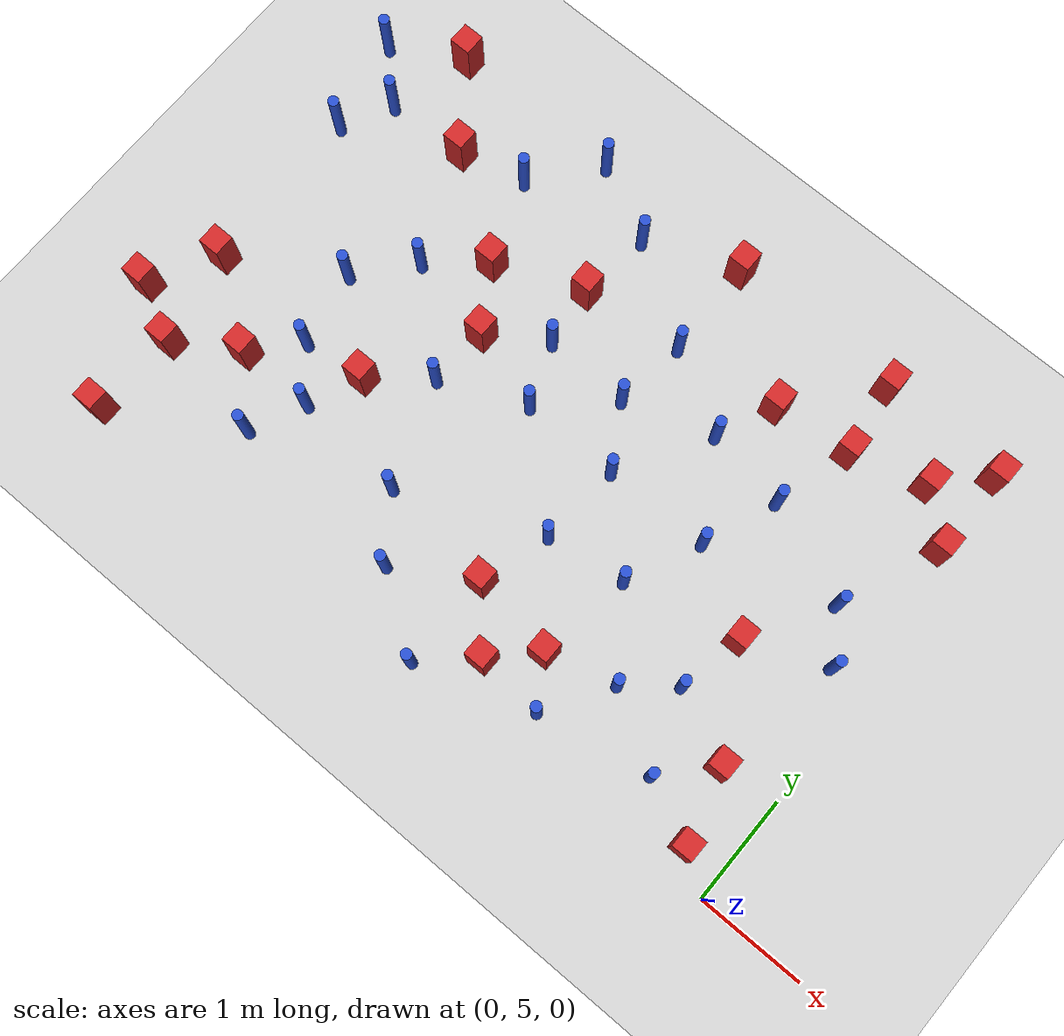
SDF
<sdf version="1.6">
 <world name="default">
  <model name="ground_plane">
   <static>1</static>
   <link name="link">
    <collision name="collision">
     <geometry><plane><normal>0 0 1</normal><size>100 100</size></plane></geometry>
     <surface><friction><ode><mu>100</mu><mu2>50</mu2></ode></friction></surface>
    </collision>
    <visual name="visual">
     <cast_shadows>0</cast_shadows>
     <geometry><plane><normal>0 0 1</normal><size>100 100</size></plane></geometry>
     <material>
      <ambient>1.0 1.0 1.0 1.0</ambient>
      <diffuse>0.8 0.8 0.8 1.0</diffuse>
      <specular>0.01 0.01 0.01 1.000000</specular>
     </material>
    </visual>
   </link>
  </model>
  <model name="pole_obstacle4">
   <static>true</static>
   <pose>-6.87340431811 9.03791344532 7.38925637345e-09 -8.471706928e-08 1.24976765081e-08 -1.74513093015e-07</pose>
   <link name="link">
    <pose>0 0 0.3 0 -0 0</pose>
    <inertial>
     <mass>1</mass>
     <inertia><ixx>0.145833</ixx><ixy>0</ixy><ixz>0</ixz><iyy>0.145833</iyy><iyz>0</iyz><izz>0.125</izz></inertia>
    </inertial>
    <collision name="collision">
     <geometry><cylinder><radius>0.05</radius><length>.6</length></cylinder></geometry>
    </collision>
    <visual name="visual">
     <geometry><cylinder><radius>0.05</radius><length>.6</length></cylinder></geometry>
     <material>
      <script><name>Gazebo/Blue</name><uri>file://media/materials/scripts/gazebo.material</uri></script>
     </material>
    </visual>
   </link>
  </model>
  <model name="square_post_obstacle8">
   <static>true</static>
   <pose>-0.546934222434 5.92013509741 1.91545236811e-07 -7.35059704564e-06 1.12565212e-07 2.39332434364e-05</pose>
   <link name="link">
    <pose>0 0 0.25 0 -0 0</pose>
    <inertial>
     <mass>100</mass>
     <inertia>
      <ixx>0.166667</ixx>
      <ixy>0</ixy>
      <ixz>0</ixz>
      <iyy>0.166667</iyy>
      <iyz>0</iyz>
      <izz>0.166667</izz>
     </inertia>
    </inertial>
    <collision name="collision"><geometry><box><size>.2 .2 .5</size></box></geometry></collision>
    <visual name="visual">
     <geometry><box><size>.2 .2 .5</size></box></geometry>
     <material>
      <script><name>Gazebo/Red</name><uri>file://media/materials/scripts/gazebo.material</uri></script>
     </material>
    </visual>
   </link>
  </model>
  <model name="square_post_obstacle20">
   <static>true</static>
   <pose>-4.96539036442 6.52452022297 1.91545236811e-07 -7.35059704564e-06 1.12565212e-07 2.39332434364e-05</pose>
   <link name="link">
    <pose>0 0 0.25 0 -0 0</pose>
    <inertial>
     <mass>100</mass>
     <inertia>
      <ixx>0.166667</ixx>
      <ixy>0</ixy>
      <ixz>0</ixz>
      <iyy>0.166667</iyy>
      <iyz>0</iyz>
      <izz>0.166667</izz>
     </inertia>
    </inertial>
    <collision name="collision"><geometry><box><size>.2 .2 .5</size></box></geometry></collision>
    <visual name="visual">
     <geometry><box><size>.2 .2 .5</size></box></geometry>
     <material>
      <script><name>Gazebo/Red</name><uri>file://media/materials/scripts/gazebo.material</uri></script>
     </material>
    </visual>
   </link>
  </model>
  <model name="pole_obstacle15">
   <static>true</static>
   <pose>-3.12654194234 7.79678296058 7.38925637345e-09 -8.47170692798e-08 1.24976765033e-08 -1.74513093019e-07</pose>
   <link name="link">
    <pose>0 0 0.3 0 -0 0</pose>
    <inertial>
     <mass>1</mass>
     <inertia><ixx>0.145833</ixx><ixy>0</ixy><ixz>0</ixz><iyy>0.145833</iyy><iyz>0</iyz><izz>0.125</izz></inertia>
    </inertial>
    <collision name="collision">
     <geometry><cylinder><radius>0.05</radius><length>.6</length></cylinder></geometry>
    </collision>
    <visual name="visual">
     <geometry><cylinder><radius>0.05</radius><length>.6</length></cylinder></geometry>
     <material>
      <script><name>Gazebo/Blue</name><uri>file://media/materials/scripts/gazebo.material</uri></script>
     </material>
    </visual>
   </link>
  </model>
  <model name="square_post_obstacle26">
   <static>true</static>
   <pose>-1.44554623606 9.35417254649 1.91545236811e-07 -7.35059704564e-06 1.12565212e-07 2.39332434364e-05</pose>
   <link name="link">
    <pose>0 0 0.25 0 -0 0</pose>
    <inertial>
     <mass>100</mass>
     <inertia>
      <ixx>0.166667</ixx>
      <ixy>0</ixy>
      <ixz>0</ixz>
      <iyy>0.166667</iyy>
      <iyz>0</iyz>
      <izz>0.166667</izz>
     </inertia>
    </inertial>
    <collision name="collision"><geometry><box><size>.2 .2 .5</size></box></geometry></collision>
    <visual name="visual">
     <geometry><box><size>.2 .2 .5</size></box></geometry>
     <material>
      <script><name>Gazebo/Red</name><uri>file://media/materials/scripts/gazebo.material</uri></script>
     </material>
    </visual>
   </link>
  </model>
  <model name="pole_obstacle20">
   <static>true</static>
   <pose>-4.60492671632 9.39282029916 7.38925637345e-09 -8.471706928e-08 1.24976765081e-08 -1.74513093015e-07</pose>
   <link name="link">
    <pose>0 0 0.3 0 -0 0</pose>
    <inertial>
     <mass>1</mass>
     <inertia><ixx>0.145833</ixx><ixy>0</ixy><ixz>0</ixz><iyy>0.145833</iyy><iyz>0</iyz><izz>0.125</izz></inertia>
    </inertial>
    <collision name="collision">
     <geometry><cylinder><radius>0.05</radius><length>.6</length></cylinder></geometry>
    </collision>
    <visual name="visual">
     <geometry><cylinder><radius>0.05</radius><length>.6</length></cylinder></geometry>
     <material>
      <script><name>Gazebo/Blue</name><uri>file://media/materials/scripts/gazebo.material</uri></script>
     </material>
    </visual>
   </link>
  </model>
  <model name="pole_obstacle25">
   <static>true</static>
   <pose>-3.72911715127 5.40606945851 7.38925637345e-09 -8.47170692798e-08 1.24976765033e-08 -1.74513093019e-07</pose>
   <link name="link">
    <pose>0 0 0.3 0 -0 0</pose>
    <inertial>
     <mass>1</mass>
     <inertia><ixx>0.145833</ixx><ixy>0</ixy><ixz>0</ixz><iyy>0.145833</iyy><iyz>0</iyz><izz>0.125</izz></inertia>
    </inertial>
    <collision name="collision">
     <geometry><cylinder><radius>0.05</radius><length>.6</length></cylinder></geometry>
    </collision>
    <visual name="visual">
     <geometry><cylinder><radius>0.05</radius><length>.6</length></cylinder></geometry>
     <material>
      <script><name>Gazebo/Blue</name><uri>file://media/materials/scripts/gazebo.material</uri></script>
     </material>
    </visual>
   </link>
  </model>
  <model name="pole_obstacle27">
   <static>true</static>
   <pose>-5.54840767096 6.44960449385 7.38925637345e-09 -8.47170692796e-08 1.24976764786e-08 -1.74513093032e-07</pose>
   <link name="link">
    <pose>0 0 0.3 0 -0 0</pose>
    <inertial>
     <mass>1</mass>
     <inertia><ixx>0.145833</ixx><ixy>0</ixy><ixz>0</ixz><iyy>0.145833</iyy><iyz>0</iyz><izz>0.125</izz></inertia>
    </inertial>
    <collision name="collision">
     <geometry><cylinder><radius>0.05</radius><length>.6</length></cylinder></geometry>
    </collision>
    <visual name="visual">
     <geometry><cylinder><radius>0.05</radius><length>.6</length></cylinder></geometry>
     <material>
      <script><name>Gazebo/Blue</name><uri>file://media/materials/scripts/gazebo.material</uri></script>
     </material>
    </visual>
   </link>
  </model>
  <model name="pole_obstacle34">
   <static>true</static>
   <pose>-3.91538359439 9.04294103025 7.38925637345e-09 -8.47170692793e-08 1.24976764408e-08 -1.74513093041e-07</pose>
   <link name="link">
    <pose>0 0 0.3 0 -0 0</pose>
    <inertial>
     <mass>1</mass>
     <inertia><ixx>0.145833</ixx><ixy>0</ixy><ixz>0</ixz><iyy>0.145833</iyy><iyz>0</iyz><izz>0.125</izz></inertia>
    </inertial>
    <collision name="collision">
     <geometry><cylinder><radius>0.05</radius><length>.6</length></cylinder></geometry>
    </collision>
    <visual name="visual">
     <geometry><cylinder><radius>0.05</radius><length>.6</length></cylinder></geometry>
     <material>
      <script><name>Gazebo/Blue</name><uri>file://media/materials/scripts/gazebo.material</uri></script>
     </material>
    </visual>
   </link>
  </model>
  <model name="square_post_obstacle36">
   <static>true</static>
   <pose>-2.07984321058 8.59805072223 1.91545236811e-07 -7.35059704564e-06 1.12565212e-07 2.39332434364e-05</pose>
   <link name="link">
    <pose>0 0 0.25 0 -0 0</pose>
    <inertial>
     <mass>100</mass>
     <inertia>
      <ixx>0.166667</ixx>
      <ixy>0</ixy>
      <ixz>0</ixz>
      <iyy>0.166667</iyy>
      <iyz>0</iyz>
      <izz>0.166667</izz>
     </inertia>
    </inertial>
    <collision name="collision"><geometry><box><size>.2 .2 .5</size></box></geometry></collision>
    <visual name="visual">
     <geometry><box><size>.2 .2 .5</size></box></geometry>
     <material>
      <script><name>Gazebo/Red</name><uri>file://media/materials/scripts/gazebo.material</uri></script>
     </material>
    </visual>
   </link>
  </model>
  <model name="pole_obstacle41">
   <static>true</static>
   <pose>-1.54980392199 7.93806452705 7.38925637345e-09 -8.47170692799e-08 1.24976765033e-08 -1.74513093018e-07</pose>
   <link name="link">
    <pose>0 0 0.3 0 -0 0</pose>
    <inertial>
     <mass>1</mass>
     <inertia><ixx>0.145833</ixx><ixy>0</ixy><ixz>0</ixz><iyy>0.145833</iyy><iyz>0</iyz><izz>0.125</izz></inertia>
    </inertial>
    <collision name="collision">
     <geometry><cylinder><radius>0.05</radius><length>.6</length></cylinder></geometry>
    </collision>
    <visual name="visual">
     <geometry><cylinder><radius>0.05</radius><length>.6</length></cylinder></geometry>
     <material>
      <script><name>Gazebo/Blue</name><uri>file://media/materials/scripts/gazebo.material</uri></script>
     </material>
    </visual>
   </link>
  </model>
  <model name="pole_obstacle42">
   <static>true</static>
   <pose>-3.03782914675 4.93671285536 7.38925637345e-09 -8.47170692798e-08 1.24976765033e-08 -1.74513093019e-07</pose>
   <link name="link">
    <pose>0 0 0.3 0 -0 0</pose>
    <inertial>
     <mass>1</mass>
     <inertia><ixx>0.145833</ixx><ixy>0</ixy><ixz>0</ixz><iyy>0.145833</iyy><iyz>0</iyz><izz>0.125</izz></inertia>
    </inertial>
    <collision name="collision">
     <geometry><cylinder><radius>0.05</radius><length>.6</length></cylinder></geometry>
    </collision>
    <visual name="visual">
     <geometry><cylinder><radius>0.05</radius><length>.6</length></cylinder></geometry>
     <material>
      <script><name>Gazebo/Blue</name><uri>file://media/materials/scripts/gazebo.material</uri></script>
     </material>
    </visual>
   </link>
  </model>
  <model name="square_post_obstacle42">
   <static>true</static>
   <pose>-1.35537491322 8.67859058484 1.91545236811e-07 -7.35059704564e-06 1.12565212e-07 2.39332434364e-05</pose>
   <link name="link">
    <pose>0 0 0.25 0 -0 0</pose>
    <inertial>
     <mass>100</mass>
     <inertia>
      <ixx>0.166667</ixx>
      <ixy>0</ixy>
      <ixz>0</ixz>
      <iyy>0.166667</iyy>
      <iyz>0</iyz>
      <izz>0.166667</izz>
     </inertia>
    </inertial>
    <collision name="collision"><geometry><box><size>.2 .2 .5</size></box></geometry></collision>
    <visual name="visual">
     <geometry><box><size>.2 .2 .5</size></box></geometry>
     <material>
      <script><name>Gazebo/Red</name><uri>file://media/materials/scripts/gazebo.material</uri></script>
     </material>
    </visual>
   </link>
  </model>
  <model name="square_post_obstacle47">
   <static>true</static>
   <pose>-0.669384163781 8.87588688768 1.91545236811e-07 -7.35059704564e-06 1.12565212e-07 2.39332434364e-05</pose>
   <link name="link">
    <pose>0 0 0.25 0 -0 0</pose>
    <inertial>
     <mass>100</mass>
     <inertia>
      <ixx>0.166667</ixx>
      <ixy>0</ixy>
      <ixz>0</ixz>
      <iyy>0.166667</iyy>
      <iyz>0</iyz>
      <izz>0.166667</izz>
     </inertia>
    </inertial>
    <collision name="collision"><geometry><box><size>.2 .2 .5</size></box></geometry></collision>
    <visual name="visual">
     <geometry><box><size>.2 .2 .5</size></box></geometry>
     <material>
      <script><name>Gazebo/Red</name><uri>file://media/materials/scripts/gazebo.material</uri></script>
     </material>
    </visual>
   </link>
  </model>
  <model name="pole_obstacle46">
   <static>true</static>
   <pose>-4.12482489764 5.9475550486 7.38925637345e-09 -8.47170692796e-08 1.24976764786e-08 -1.74513093032e-07</pose>
   <link name="link">
    <pose>0 0 0.3 0 -0 0</pose>
    <inertial>
     <mass>1</mass>
     <inertia><ixx>0.145833</ixx><ixy>0</ixy><ixz>0</ixz><iyy>0.145833</iyy><iyz>0</iyz><izz>0.125</izz></inertia>
    </inertial>
    <collision name="collision">
     <geometry><cylinder><radius>0.05</radius><length>.6</length></cylinder></geometry>
    </collision>
    <visual name="visual">
     <geometry><cylinder><radius>0.05</radius><length>.6</length></cylinder></geometry>
     <material>
      <script><name>Gazebo/Blue</name><uri>file://media/materials/scripts/gazebo.material</uri></script>
     </material>
    </visual>
   </link>
  </model>
  <model name="square_post_obstacle55">
   <static>true</static>
   <pose>-4.79187886209 8.04000122831 1.91545236811e-07 -7.35059704564e-06 1.12565212e-07 2.39332434364e-05</pose>
   <link name="link">
    <pose>0 0 0.25 0 -0 0</pose>
    <inertial>
     <mass>100</mass>
     <inertia>
      <ixx>0.166667</ixx>
      <ixy>0</ixy>
      <ixz>0</ixz>
      <iyy>0.166667</iyy>
      <iyz>0</iyz>
      <izz>0.166667</izz>
     </inertia>
    </inertial>
    <collision name="collision"><geometry><box><size>.2 .2 .5</size></box></geometry></collision>
    <visual name="visual">
     <geometry><box><size>.2 .2 .5</size></box></geometry>
     <material>
      <script><name>Gazebo/Red</name><uri>file://media/materials/scripts/gazebo.material</uri></script>
     </material>
    </visual>
   </link>
  </model>
  <model name="pole_obstacle52">
   <static>true</static>
   <pose>-5.68542781328 7.14700831854 7.38925637345e-09 -8.47170692796e-08 1.24976764786e-08 -1.74513093032e-07</pose>
   <link name="link">
    <pose>0 0 0.3 0 -0 0</pose>
    <inertial>
     <mass>1</mass>
     <inertia><ixx>0.145833</ixx><ixy>0</ixy><ixz>0</ixz><iyy>0.145833</iyy><iyz>0</iyz><izz>0.125</izz></inertia>
    </inertial>
    <collision name="collision">
     <geometry><cylinder><radius>0.05</radius><length>.6</length></cylinder></geometry>
    </collision>
    <visual name="visual">
     <geometry><cylinder><radius>0.05</radius><length>.6</length></cylinder></geometry>
     <material>
      <script><name>Gazebo/Blue</name><uri>file://media/materials/scripts/gazebo.material</uri></script>
     </material>
    </visual>
   </link>
  </model>
  <model name="pole_obstacle61">
   <static>true</static>
   <pose>-3.91855577824 7.81544058601 7.38925637345e-09 -8.47170692798e-08 1.24976765033e-08 -1.74513093019e-07</pose>
   <link name="link">
    <pose>0 0 0.3 0 -0 0</pose>
    <inertial>
     <mass>1</mass>
     <inertia><ixx>0.145833</ixx><ixy>0</ixy><ixz>0</ixz><iyy>0.145833</iyy><iyz>0</iyz><izz>0.125</izz></inertia>
    </inertial>
    <collision name="collision">
     <geometry><cylinder><radius>0.05</radius><length>.6</length></cylinder></geometry>
    </collision>
    <visual name="visual">
     <geometry><cylinder><radius>0.05</radius><length>.6</length></cylinder></geometry>
     <material>
      <script><name>Gazebo/Blue</name><uri>file://media/materials/scripts/gazebo.material</uri></script>
     </material>
    </visual>
   </link>
  </model>
  <model name="square_post_obstacle70">
   <static>true</static>
   <pose>-6.64899273155 6.5832605495 1.91545236811e-07 -7.35059704564e-06 1.12565212e-07 2.39332434364e-05</pose>
   <link name="link">
    <pose>0 0 0.25 0 -0 0</pose>
    <inertial>
     <mass>100</mass>
     <inertia>
      <ixx>0.166667</ixx>
      <ixy>0</ixy>
      <ixz>0</ixz>
      <iyy>0.166667</iyy>
      <iyz>0</iyz>
      <izz>0.166667</izz>
     </inertia>
    </inertial>
    <collision name="collision"><geometry><box><size>.2 .2 .5</size></box></geometry></collision>
    <visual name="visual">
     <geometry><box><size>.2 .2 .5</size></box></geometry>
     <material>
      <script><name>Gazebo/Red</name><uri>file://media/materials/scripts/gazebo.material</uri></script>
     </material>
    </visual>
   </link>
  </model>
  <model name="pole_obstacle68">
   <static>true</static>
   <pose>-6.69207678744 8.1644583047 7.38925637345e-09 -8.471706928e-08 1.24976765081e-08 -1.74513093015e-07</pose>
   <link name="link">
    <pose>0 0 0.3 0 -0 0</pose>
    <inertial>
     <mass>1</mass>
     <inertia><ixx>0.145833</ixx><ixy>0</ixy><ixz>0</ixz><iyy>0.145833</iyy><iyz>0</iyz><izz>0.125</izz></inertia>
    </inertial>
    <collision name="collision">
     <geometry><cylinder><radius>0.05</radius><length>.6</length></cylinder></geometry>
    </collision>
    <visual name="visual">
     <geometry><cylinder><radius>0.05</radius><length>.6</length></cylinder></geometry>
     <material>
      <script><name>Gazebo/Blue</name><uri>file://media/materials/scripts/gazebo.material</uri></script>
     </material>
    </visual>
   </link>
  </model>
  <model name="pole_obstacle75">
   <static>true</static>
   <pose>-3.69682517091 7.24900182779 7.38925637345e-09 -8.47170692798e-08 1.24976765033e-08 -1.74513093019e-07</pose>
   <link name="link">
    <pose>0 0 0.3 0 -0 0</pose>
    <inertial>
     <mass>1</mass>
     <inertia><ixx>0.145833</ixx><ixy>0</ixy><ixz>0</ixz><iyy>0.145833</iyy><iyz>0</iyz><izz>0.125</izz></inertia>
    </inertial>
    <collision name="collision">
     <geometry><cylinder><radius>0.05</radius><length>.6</length></cylinder></geometry>
    </collision>
    <visual name="visual">
     <geometry><cylinder><radius>0.05</radius><length>.6</length></cylinder></geometry>
     <material>
      <script><name>Gazebo/Blue</name><uri>file://media/materials/scripts/gazebo.material</uri></script>
     </material>
    </visual>
   </link>
  </model>
  <model name="pole_obstacle76">
   <static>true</static>
   <pose>-5.41321913789 5.53730258825 7.38925637345e-09 -8.47170692796e-08 1.24976764786e-08 -1.74513093032e-07</pose>
   <link name="link">
    <pose>0 0 0.3 0 -0 0</pose>
    <inertial>
     <mass>1</mass>
     <inertia><ixx>0.145833</ixx><ixy>0</ixy><ixz>0</ixz><iyy>0.145833</iyy><iyz>0</iyz><izz>0.125</izz></inertia>
    </inertial>
    <collision name="collision">
     <geometry><cylinder><radius>0.05</radius><length>.6</length></cylinder></geometry>
    </collision>
    <visual name="visual">
     <geometry><cylinder><radius>0.05</radius><length>.6</length></cylinder></geometry>
     <material>
      <script><name>Gazebo/Blue</name><uri>file://media/materials/scripts/gazebo.material</uri></script>
     </material>
    </visual>
   </link>
  </model>
  <model name="pole_obstacle78">
   <static>true</static>
   <pose>-1.60586687533 5.87612988426 7.38925637345e-09 -8.47170692799e-08 1.24976765033e-08 -1.74513093018e-07</pose>
   <link name="link">
    <pose>0 0 0.3 0 -0 0</pose>
    <inertial>
     <mass>1</mass>
     <inertia><ixx>0.145833</ixx><ixy>0</ixy><ixz>0</ixz><iyy>0.145833</iyy><iyz>0</iyz><izz>0.125</izz></inertia>
    </inertial>
    <collision name="collision">
     <geometry><cylinder><radius>0.05</radius><length>.6</length></cylinder></geometry>
    </collision>
    <visual name="visual">
     <geometry><cylinder><radius>0.05</radius><length>.6</length></cylinder></geometry>
     <material>
      <script><name>Gazebo/Blue</name><uri>file://media/materials/scripts/gazebo.material</uri></script>
     </material>
    </visual>
   </link>
  </model>
  <model name="square_post_obstacle77">
   <static>true</static>
   <pose>-6.23135589665 9.40023006701 1.91545236811e-07 -7.35059704564e-06 1.12565212e-07 2.39332434364e-05</pose>
   <link name="link">
    <pose>0 0 0.25 0 -0 0</pose>
    <inertial>
     <mass>100</mass>
     <inertia>
      <ixx>0.166667</ixx>
      <ixy>0</ixy>
      <ixz>0</ixz>
      <iyy>0.166667</iyy>
      <iyz>0</iyz>
      <izz>0.166667</izz>
     </inertia>
    </inertial>
    <collision name="collision"><geometry><box><size>.2 .2 .5</size></box></geometry></collision>
    <visual name="visual">
     <geometry><box><size>.2 .2 .5</size></box></geometry>
     <material>
      <script><name>Gazebo/Red</name><uri>file://media/materials/scripts/gazebo.material</uri></script>
     </material>
    </visual>
   </link>
  </model>
  <model name="pole_obstacle99">
   <static>true</static>
   <pose>-2.11418891162 6.58127672364 7.38925637345e-09 -8.47170692798e-08 1.24976765033e-08 -1.74513093019e-07</pose>
   <link name="link">
    <pose>0 0 0.3 0 -0 0</pose>
    <inertial>
     <mass>1</mass>
     <inertia><ixx>0.145833</ixx><ixy>0</ixy><ixz>0</ixz><iyy>0.145833</iyy><iyz>0</iyz><izz>0.125</izz></inertia>
    </inertial>
    <collision name="collision">
     <geometry><cylinder><radius>0.05</radius><length>.6</length></cylinder></geometry>
    </collision>
    <visual name="visual">
     <geometry><cylinder><radius>0.05</radius><length>.6</length></cylinder></geometry>
     <material>
      <script><name>Gazebo/Blue</name><uri>file://media/materials/scripts/gazebo.material</uri></script>
     </material>
    </visual>
   </link>
  </model>
  <model name="square_post_obstacle90">
   <static>true</static>
   <pose>-4.43739869561 7.48423768868 1.91545236811e-07 -7.35059704564e-06 1.12565212e-07 2.39332434364e-05</pose>
   <link name="link">
    <pose>0 0 0.25 0 -0 0</pose>
    <inertial>
     <mass>100</mass>
     <inertia>
      <ixx>0.166667</ixx>
      <ixy>0</ixy>
      <ixz>0</ixz>
      <iyy>0.166667</iyy>
      <iyz>0</iyz>
      <izz>0.166667</izz>
     </inertia>
    </inertial>
    <collision name="collision"><geometry><box><size>.2 .2 .5</size></box></geometry></collision>
    <visual name="visual">
     <geometry><box><size>.2 .2 .5</size></box></geometry>
     <material>
      <script><name>Gazebo/Red</name><uri>file://media/materials/scripts/gazebo.material</uri></script>
     </material>
    </visual>
   </link>
  </model>
  <model name="square_post_obstacle93">
   <static>true</static>
   <pose>-6.52714349729 4.89178833424 1.91545236811e-07 -7.35059704564e-06 1.12565212e-07 2.39332434364e-05</pose>
   <link name="link">
    <pose>0 0 0.25 0 -0 0</pose>
    <inertial>
     <mass>100</mass>
     <inertia>
      <ixx>0.166667</ixx>
      <ixy>0</ixy>
      <ixz>0</ixz>
      <iyy>0.166667</iyy>
      <iyz>0</iyz>
      <izz>0.166667</izz>
     </inertia>
    </inertial>
    <collision name="collision"><geometry><box><size>.2 .2 .5</size></box></geometry></collision>
    <visual name="visual">
     <geometry><box><size>.2 .2 .5</size></box></geometry>
     <material>
      <script><name>Gazebo/Red</name><uri>file://media/materials/scripts/gazebo.material</uri></script>
     </material>
    </visual>
   </link>
  </model>
  <model name="pole_obstacle106">
   <static>true</static>
   <pose>-0.930278733526 5.48179833311 7.38925637345e-09 -8.471706928e-08 1.24976765086e-08 -1.74513093015e-07</pose>
   <link name="link">
    <pose>0 0 0.3 0 -0 0</pose>
    <inertial>
     <mass>1</mass>
     <inertia><ixx>0.145833</ixx><ixy>0</ixy><ixz>0</ixz><iyy>0.145833</iyy><iyz>0</iyz><izz>0.125</izz></inertia>
    </inertial>
    <collision name="collision">
     <geometry><cylinder><radius>0.05</radius><length>.6</length></cylinder></geometry>
    </collision>
    <visual name="visual">
     <geometry><cylinder><radius>0.05</radius><length>.6</length></cylinder></geometry>
     <material>
      <script><name>Gazebo/Blue</name><uri>file://media/materials/scripts/gazebo.material</uri></script>
     </material>
    </visual>
   </link>
  </model>
  <model name="square_post_obstacle94">
   <static>true</static>
   <pose>-3.0318908532 5.82920074484 1.91545236811e-07 -7.35059704564e-06 1.12565212e-07 2.39332434364e-05</pose>
   <link name="link">
    <pose>0 0 0.25 0 -0 0</pose>
    <inertial>
     <mass>100</mass>
     <inertia>
      <ixx>0.166667</ixx>
      <ixy>0</ixy>
      <ixz>0</ixz>
      <iyy>0.166667</iyy>
      <iyz>0</iyz>
      <izz>0.166667</izz>
     </inertia>
    </inertial>
    <collision name="collision"><geometry><box><size>.2 .2 .5</size></box></geometry></collision>
    <visual name="visual">
     <geometry><box><size>.2 .2 .5</size></box></geometry>
     <material>
      <script><name>Gazebo/Red</name><uri>file://media/materials/scripts/gazebo.material</uri></script>
     </material>
    </visual>
   </link>
  </model>
  <model name="square_post_obstacle97">
   <static>true</static>
   <pose>-5.89845350745 6.05170849347 1.91545236811e-07 -7.35059704564e-06 1.12565212e-07 2.39332434364e-05</pose>
   <link name="link">
    <pose>0 0 0.25 0 -0 0</pose>
    <inertial>
     <mass>100</mass>
     <inertia>
      <ixx>0.166667</ixx>
      <ixy>0</ixy>
      <ixz>0</ixz>
      <iyy>0.166667</iyy>
      <iyz>0</iyz>
      <izz>0.166667</izz>
     </inertia>
    </inertial>
    <collision name="collision"><geometry><box><size>.2 .2 .5</size></box></geometry></collision>
    <visual name="visual">
     <geometry><box><size>.2 .2 .5</size></box></geometry>
     <material>
      <script><name>Gazebo/Red</name><uri>file://media/materials/scripts/gazebo.material</uri></script>
     </material>
    </visual>
   </link>
  </model>
  <model name="square_post_obstacle111">
   <static>true</static>
   <pose>-3.9870388735 8.36659125548 1.91545236811e-07 -7.35059704564e-06 1.12565212e-07 2.39332434364e-05</pose>
   <link name="link">
    <pose>0 0 0.25 0 -0 0</pose>
    <inertial>
     <mass>100</mass>
     <inertia>
      <ixx>0.166667</ixx>
      <ixy>0</ixy>
      <ixz>0</ixz>
      <iyy>0.166667</iyy>
      <iyz>0</iyz>
      <izz>0.166667</izz>
     </inertia>
    </inertial>
    <collision name="collision"><geometry><box><size>.2 .2 .5</size></box></geometry></collision>
    <visual name="visual">
     <geometry><box><size>.2 .2 .5</size></box></geometry>
     <material>
      <script><name>Gazebo/Red</name><uri>file://media/materials/scripts/gazebo.material</uri></script>
     </material>
    </visual>
   </link>
  </model>
  <model name="square_post_obstacle112">
   <static>true</static>
   <pose>-6.46885260474 5.70149475803 1.91545236811e-07 -7.35059704564e-06 1.12565212e-07 2.39332434364e-05</pose>
   <link name="link">
    <pose>0 0 0.25 0 -0 0</pose>
    <inertial>
     <mass>100</mass>
     <inertia>
      <ixx>0.166667</ixx>
      <ixy>0</ixy>
      <ixz>0</ixz>
      <iyy>0.166667</iyy>
      <iyz>0</iyz>
      <izz>0.166667</izz>
     </inertia>
    </inertial>
    <collision name="collision"><geometry><box><size>.2 .2 .5</size></box></geometry></collision>
    <visual name="visual">
     <geometry><box><size>.2 .2 .5</size></box></geometry>
     <material>
      <script><name>Gazebo/Red</name><uri>file://media/materials/scripts/gazebo.material</uri></script>
     </material>
    </visual>
   </link>
  </model>
  <model name="pole_obstacle122">
   <static>true</static>
   <pose>-1.80998188249 7.25471748319 7.38925637345e-09 -8.47170692799e-08 1.24976765033e-08 -1.74513093018e-07</pose>
   <link name="link">
    <pose>0 0 0.3 0 -0 0</pose>
    <inertial>
     <mass>1</mass>
     <inertia><ixx>0.145833</ixx><ixy>0</ixy><ixz>0</ixz><iyy>0.145833</iyy><iyz>0</iyz><izz>0.125</izz></inertia>
    </inertial>
    <collision name="collision">
     <geometry><cylinder><radius>0.05</radius><length>.6</length></cylinder></geometry>
    </collision>
    <visual name="visual">
     <geometry><cylinder><radius>0.05</radius><length>.6</length></cylinder></geometry>
     <material>
      <script><name>Gazebo/Blue</name><uri>file://media/materials/scripts/gazebo.material</uri></script>
     </material>
    </visual>
   </link>
  </model>
  <model name="pole_obstacle125">
   <static>true</static>
   <pose>-3.04711890086 8.47479604011 7.38925637345e-09 -8.47170692793e-08 1.24976764408e-08 -1.74513093041e-07</pose>
   <link name="link">
    <pose>0 0 0.3 0 -0 0</pose>
    <inertial>
     <mass>1</mass>
     <inertia><ixx>0.145833</ixx><ixy>0</ixy><ixz>0</ixz><iyy>0.145833</iyy><iyz>0</iyz><izz>0.125</izz></inertia>
    </inertial>
    <collision name="collision">
     <geometry><cylinder><radius>0.05</radius><length>.6</length></cylinder></geometry>
    </collision>
    <visual name="visual">
     <geometry><cylinder><radius>0.05</radius><length>.6</length></cylinder></geometry>
     <material>
      <script><name>Gazebo/Blue</name><uri>file://media/materials/scripts/gazebo.material</uri></script>
     </material>
    </visual>
   </link>
  </model>
  <model name="square_post_obstacle117">
   <static>true</static>
   <pose>-0.261803821899 8.50336303013 1.91545236811e-07 -7.35059704564e-06 1.12565212e-07 2.39332434364e-05</pose>
   <link name="link">
    <pose>0 0 0.25 0 -0 0</pose>
    <inertial>
     <mass>100</mass>
     <inertia>
      <ixx>0.166667</ixx>
      <ixy>0</ixy>
      <ixz>0</ixz>
      <iyy>0.166667</iyy>
      <iyz>0</iyz>
      <izz>0.166667</izz>
     </inertia>
    </inertial>
    <collision name="collision"><geometry><box><size>.2 .2 .5</size></box></geometry></collision>
    <visual name="visual">
     <geometry><box><size>.2 .2 .5</size></box></geometry>
     <material>
      <script><name>Gazebo/Red</name><uri>file://media/materials/scripts/gazebo.material</uri></script>
     </material>
    </visual>
   </link>
  </model>
  <model name="square_post_obstacle121">
   <static>true</static>
   <pose>-0.270389389536 9.30108046254 1.91545236811e-07 -7.35059704564e-06 1.12565212e-07 2.39332434364e-05</pose>
   <link name="link">
    <pose>0 0 0.25 0 -0 0</pose>
    <inertial>
     <mass>100</mass>
     <inertia>
      <ixx>0.166667</ixx>
      <ixy>0</ixy>
      <ixz>0</ixz>
      <iyy>0.166667</iyy>
      <iyz>0</iyz>
      <izz>0.166667</izz>
     </inertia>
    </inertial>
    <collision name="collision"><geometry><box><size>.2 .2 .5</size></box></geometry></collision>
    <visual name="visual">
     <geometry><box><size>.2 .2 .5</size></box></geometry>
     <material>
      <script><name>Gazebo/Red</name><uri>file://media/materials/scripts/gazebo.material</uri></script>
     </material>
    </visual>
   </link>
  </model>
  <model name="square_post_obstacle131">
   <static>true</static>
   <pose>-2.24575443248 5.70874784312 1.91545236811e-07 -7.35059704564e-06 1.12565212e-07 2.39332434364e-05</pose>
   <link name="link">
    <pose>0 0 0.25 0 -0 0</pose>
    <inertial>
     <mass>100</mass>
     <inertia>
      <ixx>0.166667</ixx>
      <ixy>0</ixy>
      <ixz>0</ixz>
      <iyy>0.166667</iyy>
      <iyz>0</iyz>
      <izz>0.166667</izz>
     </inertia>
    </inertial>
    <collision name="collision"><geometry><box><size>.2 .2 .5</size></box></geometry></collision>
    <visual name="visual">
     <geometry><box><size>.2 .2 .5</size></box></geometry>
     <material>
      <script><name>Gazebo/Red</name><uri>file://media/materials/scripts/gazebo.material</uri></script>
     </material>
    </visual>
   </link>
  </model>
  <model name="pole_obstacle144">
   <static>true</static>
   <pose>-5.07857481552 8.81636794212 7.38925637345e-09 -8.471706928e-08 1.24976765081e-08 -1.74513093015e-07</pose>
   <link name="link">
    <pose>0 0 0.3 0 -0 0</pose>
    <inertial>
     <mass>1</mass>
     <inertia><ixx>0.145833</ixx><ixy>0</ixy><ixz>0</ixz><iyy>0.145833</iyy><iyz>0</iyz><izz>0.125</izz></inertia>
    </inertial>
    <collision name="collision">
     <geometry><cylinder><radius>0.05</radius><length>.6</length></cylinder></geometry>
    </collision>
    <visual name="visual">
     <geometry><cylinder><radius>0.05</radius><length>.6</length></cylinder></geometry>
     <material>
      <script><name>Gazebo/Blue</name><uri>file://media/materials/scripts/gazebo.material</uri></script>
     </material>
    </visual>
   </link>
  </model>
  <model name="pole_obstacle145">
   <static>true</static>
   <pose>-2.7896743979 7.24178282127 7.38925637345e-09 -8.47170692798e-08 1.24976765033e-08 -1.74513093019e-07</pose>
   <link name="link">
    <pose>0 0 0.3 0 -0 0</pose>
    <inertial>
     <mass>1</mass>
     <inertia><ixx>0.145833</ixx><ixy>0</ixy><ixz>0</ixz><iyy>0.145833</iyy><iyz>0</iyz><izz>0.125</izz></inertia>
    </inertial>
    <collision name="collision">
     <geometry><cylinder><radius>0.05</radius><length>.6</length></cylinder></geometry>
    </collision>
    <visual name="visual">
     <geometry><cylinder><radius>0.05</radius><length>.6</length></cylinder></geometry>
     <material>
      <script><name>Gazebo/Blue</name><uri>file://media/materials/scripts/gazebo.material</uri></script>
     </material>
    </visual>
   </link>
  </model>
  <model name="pole_obstacle150">
   <static>true</static>
   <pose>-2.30919516647 8.06570930464 7.38925637345e-09 -8.47170692793e-08 1.24976764408e-08 -1.74513093041e-07</pose>
   <link name="link">
    <pose>0 0 0.3 0 -0 0</pose>
    <inertial>
     <mass>1</mass>
     <inertia><ixx>0.145833</ixx><ixy>0</ixy><ixz>0</ixz><iyy>0.145833</iyy><iyz>0</iyz><izz>0.125</izz></inertia>
    </inertial>
    <collision name="collision">
     <geometry><cylinder><radius>0.05</radius><length>.6</length></cylinder></geometry>
    </collision>
    <visual name="visual">
     <geometry><cylinder><radius>0.05</radius><length>.6</length></cylinder></geometry>
     <material>
      <script><name>Gazebo/Blue</name><uri>file://media/materials/scripts/gazebo.material</uri></script>
     </material>
    </visual>
   </link>
  </model>
  <model name="pole_obstacle151">
   <static>true</static>
   <pose>-5.17632835984 6.03399952208 7.38925637345e-09 -8.47170692796e-08 1.24976764786e-08 -1.74513093032e-07</pose>
   <link name="link">
    <pose>0 0 0.3 0 -0 0</pose>
    <inertial>
     <mass>1</mass>
     <inertia><ixx>0.145833</ixx><ixy>0</ixy><ixz>0</ixz><iyy>0.145833</iyy><iyz>0</iyz><izz>0.125</izz></inertia>
    </inertial>
    <collision name="collision">
     <geometry><cylinder><radius>0.05</radius><length>.6</length></cylinder></geometry>
    </collision>
    <visual name="visual">
     <geometry><cylinder><radius>0.05</radius><length>.6</length></cylinder></geometry>
     <material>
      <script><name>Gazebo/Blue</name><uri>file://media/materials/scripts/gazebo.material</uri></script>
     </material>
    </visual>
   </link>
  </model>
  <model name="pole_obstacle159">
   <static>true</static>
   <pose>-2.84183907613 6.47247225377 7.38925637345e-09 -8.47170692798e-08 1.24976765033e-08 -1.74513093019e-07</pose>
   <link name="link">
    <pose>0 0 0.3 0 -0 0</pose>
    <inertial>
     <mass>1</mass>
     <inertia><ixx>0.145833</ixx><ixy>0</ixy><ixz>0</ixz><iyy>0.145833</iyy><iyz>0</iyz><izz>0.125</izz></inertia>
    </inertial>
    <collision name="collision">
     <geometry><cylinder><radius>0.05</radius><length>.6</length></cylinder></geometry>
    </collision>
    <visual name="visual">
     <geometry><cylinder><radius>0.05</radius><length>.6</length></cylinder></geometry>
     <material>
      <script><name>Gazebo/Blue</name><uri>file://media/materials/scripts/gazebo.material</uri></script>
     </material>
    </visual>
   </link>
  </model>
  <model name="square_post_obstacle157">
   <static>true</static>
   <pose>-5.6872067151 8.66963211707 1.91545236811e-07 -7.35059704564e-06 1.12565212e-07 2.39332434364e-05</pose>
   <link name="link">
    <pose>0 0 0.25 0 -0 0</pose>
    <inertial>
     <mass>100</mass>
     <inertia>
      <ixx>0.166667</ixx>
      <ixy>0</ixy>
      <ixz>0</ixz>
      <iyy>0.166667</iyy>
      <iyz>0</iyz>
      <izz>0.166667</izz>
     </inertia>
    </inertial>
    <collision name="collision"><geometry><box><size>.2 .2 .5</size></box></geometry></collision>
    <visual name="visual">
     <geometry><box><size>.2 .2 .5</size></box></geometry>
     <material>
      <script><name>Gazebo/Red</name><uri>file://media/materials/scripts/gazebo.material</uri></script>
     </material>
    </visual>
   </link>
  </model>
  <model name="pole_obstacle165">
   <static>true</static>
   <pose>-0.626016517908 7.56800408616 7.38925637345e-09 -8.471706928e-08 1.24976765086e-08 -1.74513093015e-07</pose>
   <link name="link">
    <pose>0 0 0.3 0 -0 0</pose>
    <inertial>
     <mass>1</mass>
     <inertia><ixx>0.145833</ixx><ixy>0</ixy><ixz>0</ixz><iyy>0.145833</iyy><iyz>0</iyz><izz>0.125</izz></inertia>
    </inertial>
    <collision name="collision">
     <geometry><cylinder><radius>0.05</radius><length>.6</length></cylinder></geometry>
    </collision>
    <visual name="visual">
     <geometry><cylinder><radius>0.05</radius><length>.6</length></cylinder></geometry>
     <material>
      <script><name>Gazebo/Blue</name><uri>file://media/materials/scripts/gazebo.material</uri></script>
     </material>
    </visual>
   </link>
  </model>
  <model name="pole_obstacle166">
   <static>true</static>
   <pose>-1.97332051301 5.28228870804 7.38925637345e-09 -8.47170692799e-08 1.2497676507e-08 -1.74513093016e-07</pose>
   <link name="link">
    <pose>0 0 0.3 0 -0 0</pose>
    <inertial>
     <mass>1</mass>
     <inertia><ixx>0.145833</ixx><ixy>0</ixy><ixz>0</ixz><iyy>0.145833</iyy><iyz>0</iyz><izz>0.125</izz></inertia>
    </inertial>
    <collision name="collision">
     <geometry><cylinder><radius>0.05</radius><length>.6</length></cylinder></geometry>
    </collision>
    <visual name="visual">
     <geometry><cylinder><radius>0.05</radius><length>.6</length></cylinder></geometry>
     <material>
      <script><name>Gazebo/Blue</name><uri>file://media/materials/scripts/gazebo.material</uri></script>
     </material>
    </visual>
   </link>
  </model>
  <model name="square_post_obstacle159">
   <static>true</static>
   <pose>-6.98562609364 5.96940776325 1.91545236811e-07 -7.35059704564e-06 1.12565212e-07 2.39332434364e-05</pose>
   <link name="link">
    <pose>0 0 0.25 0 -0 0</pose>
    <inertial>
     <mass>100</mass>
     <inertia>
      <ixx>0.166667</ixx>
      <ixy>0</ixy>
      <ixz>0</ixz>
      <iyy>0.166667</iyy>
      <iyz>0</iyz>
      <izz>0.166667</izz>
     </inertia>
    </inertial>
    <collision name="collision"><geometry><box><size>.2 .2 .5</size></box></geometry></collision>
    <visual name="visual">
     <geometry><box><size>.2 .2 .5</size></box></geometry>
     <material>
      <script><name>Gazebo/Red</name><uri>file://media/materials/scripts/gazebo.material</uri></script>
     </material>
    </visual>
   </link>
  </model>
  <model name="pole_obstacle176">
   <static>true</static>
   <pose>-5.26852526183 7.63912236812 7.38925637345e-09 -8.47170692796e-08 1.24976764786e-08 -1.74513093032e-07</pose>
   <link name="link">
    <pose>0 0 0.3 0 -0 0</pose>
    <inertial>
     <mass>1</mass>
     <inertia><ixx>0.145833</ixx><ixy>0</ixy><ixz>0</ixz><iyy>0.145833</iyy><iyz>0</iyz><izz>0.125</izz></inertia>
    </inertial>
    <collision name="collision">
     <geometry><cylinder><radius>0.05</radius><length>.6</length></cylinder></geometry>
    </collision>
    <visual name="visual">
     <geometry><cylinder><radius>0.05</radius><length>.6</length></cylinder></geometry>
     <material>
      <script><name>Gazebo/Blue</name><uri>file://media/materials/scripts/gazebo.material</uri></script>
     </material>
    </visual>
   </link>
  </model>
  <model name="square_post_obstacle166">
   <static>true</static>
   <pose>-3.07620695162 9.38289154957 1.91545236811e-07 -7.35059704564e-06 1.12565212e-07 2.39332434364e-05</pose>
   <link name="link">
    <pose>0 0 0.25 0 -0 0</pose>
    <inertial>
     <mass>100</mass>
     <inertia>
      <ixx>0.166667</ixx>
      <ixy>0</ixy>
      <ixz>0</ixz>
      <iyy>0.166667</iyy>
      <iyz>0</iyz>
      <izz>0.166667</izz>
     </inertia>
    </inertial>
    <collision name="collision"><geometry><box><size>.2 .2 .5</size></box></geometry></collision>
    <visual name="visual">
     <geometry><box><size>.2 .2 .5</size></box></geometry>
     <material>
      <script><name>Gazebo/Red</name><uri>file://media/materials/scripts/gazebo.material</uri></script>
     </material>
    </visual>
   </link>
  </model>
  <model name="pole_obstacle183">
   <static>true</static>
   <pose>-4.47106519884 6.91632528732 7.38925637345e-09 -8.47170692796e-08 1.24976764786e-08 -1.74513093032e-07</pose>
   <link name="link">
    <pose>0 0 0.3 0 -0 0</pose>
    <inertial>
     <mass>1</mass>
     <inertia><ixx>0.145833</ixx><ixy>0</ixy><ixz>0</ixz><iyy>0.145833</iyy><iyz>0</iyz><izz>0.125</izz></inertia>
    </inertial>
    <collision name="collision">
     <geometry><cylinder><radius>0.05</radius><length>.6</length></cylinder></geometry>
    </collision>
    <visual name="visual">
     <geometry><cylinder><radius>0.05</radius><length>.6</length></cylinder></geometry>
     <material>
      <script><name>Gazebo/Blue</name><uri>file://media/materials/scripts/gazebo.material</uri></script>
     </material>
    </visual>
   </link>
  </model>
  <model name="square_post_obstacle185">
   <static>true</static>
   <pose>-1.07609107721 6.82681591437 1.91545236811e-07 -7.35059704564e-06 1.12565212e-07 2.39332434364e-05</pose>
   <link name="link">
    <pose>0 0 0.25 0 -0 0</pose>
    <inertial>
     <mass>100</mass>
     <inertia>
      <ixx>0.166667</ixx>
      <ixy>0</ixy>
      <ixz>0</ixz>
      <iyy>0.166667</iyy>
      <iyz>0</iyz>
      <izz>0.166667</izz>
     </inertia>
    </inertial>
    <collision name="collision"><geometry><box><size>.2 .2 .5</size></box></geometry></collision>
    <visual name="visual">
     <geometry><box><size>.2 .2 .5</size></box></geometry>
     <material>
      <script><name>Gazebo/Red</name><uri>file://media/materials/scripts/gazebo.material</uri></script>
     </material>
    </visual>
   </link>
  </model>
  <model name="square_post_obstacle193">
   <static>true</static>
   <pose>-0.37044680427 5.24038616801 1.91545236811e-07 -7.35059704564e-06 1.12565212e-07 2.39332434364e-05</pose>
   <link name="link">
    <pose>0 0 0.25 0 -0 0</pose>
    <inertial>
     <mass>100</mass>
     <inertia>
      <ixx>0.166667</ixx>
      <ixy>0</ixy>
      <ixz>0</ixz>
      <iyy>0.166667</iyy>
      <iyz>0</iyz>
      <izz>0.166667</izz>
     </inertia>
    </inertial>
    <collision name="collision"><geometry><box><size>.2 .2 .5</size></box></geometry></collision>
    <visual name="visual">
     <geometry><box><size>.2 .2 .5</size></box></geometry>
     <material>
      <script><name>Gazebo/Red</name><uri>file://media/materials/scripts/gazebo.material</uri></script>
     </material>
    </visual>
   </link>
  </model>
  <model name="square_post_obstacle207">
   <static>true</static>
   <pose>-2.60383623009 5.34253217088 1.91545236811e-07 -7.35059704564e-06 1.12565212e-07 2.39332434364e-05</pose>
   <link name="link">
    <pose>0 0 0.25 0 -0 0</pose>
    <inertial>
     <mass>100</mass>
     <inertia>
      <ixx>0.166667</ixx>
      <ixy>0</ixy>
      <ixz>0</ixz>
      <iyy>0.166667</iyy>
      <iyz>0</iyz>
      <izz>0.166667</izz>
     </inertia>
    </inertial>
    <collision name="collision"><geometry><box><size>.2 .2 .5</size></box></geometry></collision>
    <visual name="visual">
     <geometry><box><size>.2 .2 .5</size></box></geometry>
     <material>
      <script><name>Gazebo/Red</name><uri>file://media/materials/scripts/gazebo.material</uri></script>
     </material>
    </visual>
   </link>
  </model>
  <model name="pole_obstacle193">
   <static>true</static>
   <pose>-0.337940990425 7.12511002078 7.38925637345e-09 -8.47170692799e-08 1.2497676511e-08 -1.74513093014e-07</pose>
   <link name="link">
    <pose>0 0 0.3 0 -0 0</pose>
    <inertial>
     <mass>1</mass>
     <inertia><ixx>0.145833</ixx><ixy>0</ixy><ixz>0</ixz><iyy>0.145833</iyy><iyz>0</iyz><izz>0.125</izz></inertia>
    </inertial>
    <collision name="collision">
     <geometry><cylinder><radius>0.05</radius><length>.6</length></cylinder></geometry>
    </collision>
    <visual name="visual">
     <geometry><cylinder><radius>0.05</radius><length>.6</length></cylinder></geometry>
     <material>
      <script><name>Gazebo/Blue</name><uri>file://media/materials/scripts/gazebo.material</uri></script>
     </material>
    </visual>
   </link>
  </model>
  <model name="pole_obstacle195">
   <static>true</static>
   <pose>-6.45046999043 8.62738002078 7.38925637345e-09 -8.471706928e-08 1.24976765081e-08 -1.74513093015e-07</pose>
   <link name="link">
    <pose>0 0 0.3 0 -0 0</pose>
    <inertial>
     <mass>1</mass>
     <inertia><ixx>0.145833</ixx><ixy>0</ixy><ixz>0</ixz><iyy>0.145833</iyy><iyz>0</iyz><izz>0.125</izz></inertia>
    </inertial>
    <collision name="collision">
     <geometry><cylinder><radius>0.05</radius><length>.6</length></cylinder></geometry>
    </collision>
    <visual name="visual">
     <geometry><cylinder><radius>0.05</radius><length>.6</length></cylinder></geometry>
     <material>
      <script><name>Gazebo/Blue</name><uri>file://media/materials/scripts/gazebo.material</uri></script>
     </material>
    </visual>
   </link>
  </model>
  <model name="pole_obstacle212">
   <static>true</static>
   <pose>-1.19118999043 6.20875002078 7.38925637345e-09 -8.47170692799e-08 1.24976765052e-08 -1.74513093018e-07</pose>
   <link name="link">
    <pose>0 0 0.3 0 -0 0</pose>
    <inertial>
     <mass>1</mass>
     <inertia><ixx>0.145833</ixx><ixy>0</ixy><ixz>0</ixz><iyy>0.145833</iyy><iyz>0</iyz><izz>0.125</izz></inertia>
    </inertial>
    <collision name="collision">
     <geometry><cylinder><radius>0.05</radius><length>.6</length></cylinder></geometry>
    </collision>
    <visual name="visual">
     <geometry><cylinder><radius>0.05</radius><length>.6</length></cylinder></geometry>
     <material>
      <script><name>Gazebo/Blue</name><uri>file://media/materials/scripts/gazebo.material</uri></script>
     </material>
    </visual>
   </link>
  </model>
 </world>
</sdf>
